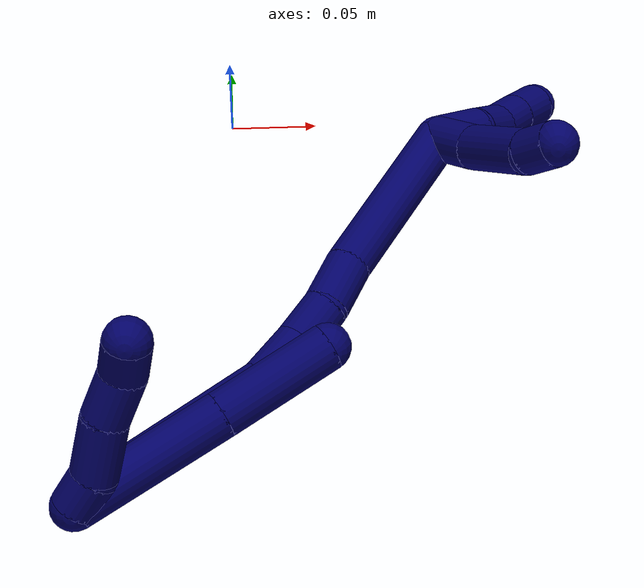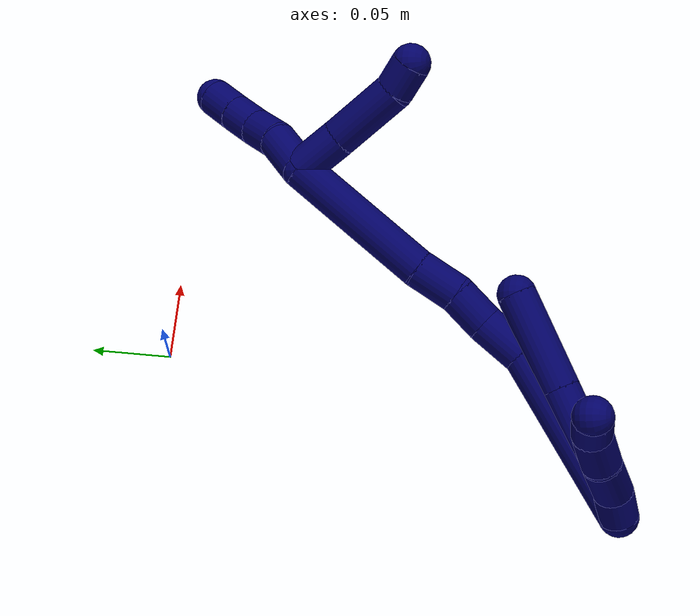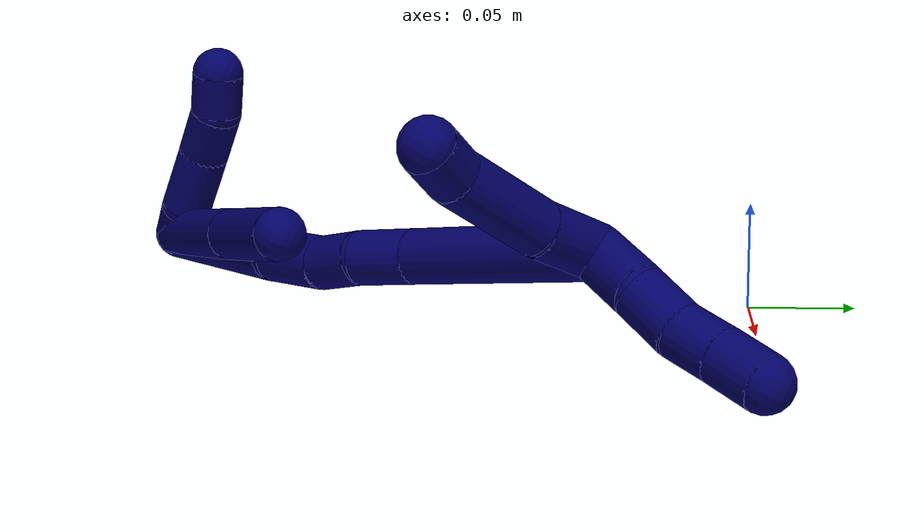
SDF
<sdf version="1.7">
 <world name="default">
  <model name="7">
   <static>0</static>
   <link name="7">
    <collision name="collision-cylinder-e_1_2_8">
     <pose>0.026178 0.029375 -0.016413 -2.08033 0.661147 -1.0584</pose>
     <geometry><cylinder><radius>0.0125</radius><length>0.085266</length></cylinder></geometry>
     <surface>
      <friction><ode><mu>1.16</mu><mu2>1.16</mu2><slip1>0</slip1><slip2>0</slip2></ode></friction>
      <contact><ode><kp>1e+06</kp><kd>1</kd><max_vel>0</max_vel><min_depth>0.001</min_depth></ode></contact>
     </surface>
    </collision>
    <visual name="visual-cylinder-e_1_2_8">
     <pose>0.026178 0.029375 -0.016413 -2.08033 0.661147 -1.0584</pose>
     <geometry><cylinder><radius>0.0125</radius><length>0.085266</length></cylinder></geometry>
     <material><ambient>0.003922 0 0.403922 1</ambient></material>
    </visual>
    <collision name="collision-cylinder-e_2_8_6">
     <pose>0.071936 0.081248 -0.045401 -2.08046 0.649716 -1.04226</pose>
     <geometry><cylinder><radius>0.0125</radius><length>0.064734</length></cylinder></geometry>
     <surface>
      <friction><ode><mu>1.16</mu><mu2>1.16</mu2><slip1>0</slip1><slip2>0</slip2></ode></friction>
      <contact><ode><kp>1e+06</kp><kd>1</kd><max_vel>0</max_vel><min_depth>0.001</min_depth></ode></contact>
     </surface>
    </collision>
    <visual name="visual-cylinder-e_2_8_6">
     <pose>0.071936 0.081248 -0.045401 -2.08046 0.649716 -1.04226</pose>
     <geometry><cylinder><radius>0.0125</radius><length>0.064734</length></cylinder></geometry>
     <material><ambient>0.003922 0 0.403922 1</ambient></material>
    </visual>
    <collision name="collision-cylinder-e_1_2_9">
     <pose>0.001589 0.010065 0.000616 -1.50964 0.156291 -0.147048</pose>
     <geometry><cylinder><radius>0.0125</radius><length>0.020417</length></cylinder></geometry>
     <surface>
      <friction><ode><mu>1.16</mu><mu2>1.16</mu2><slip1>0</slip1><slip2>0</slip2></ode></friction>
      <contact><ode><kp>1e+06</kp><kd>1</kd><max_vel>0</max_vel><min_depth>0.001</min_depth></ode></contact>
     </surface>
    </collision>
    <visual name="visual-cylinder-e_1_2_9">
     <pose>0.001589 0.010065 0.000616 -1.50964 0.156291 -0.147048</pose>
     <geometry><cylinder><radius>0.0125</radius><length>0.020417</length></cylinder></geometry>
     <material><ambient>0.003922 0 0.403922 1</ambient></material>
    </visual>
    <collision name="collision-cylinder-e_2_9_10">
     <pose>0.000268 0.036217 0.002518 -1.49106 -0.178411 0.164788</pose>
     <geometry><cylinder><radius>0.0125</radius><length>0.032795</length></cylinder></geometry>
     <surface>
      <friction><ode><mu>1.16</mu><mu2>1.16</mu2><slip1>0</slip1><slip2>0</slip2></ode></friction>
      <contact><ode><kp>1e+06</kp><kd>1</kd><max_vel>0</max_vel><min_depth>0.001</min_depth></ode></contact>
     </surface>
    </collision>
    <visual name="visual-cylinder-e_2_9_10">
     <pose>0.000268 0.036217 0.002518 -1.49106 -0.178411 0.164788</pose>
     <geometry><cylinder><radius>0.0125</radius><length>0.032795</length></cylinder></geometry>
     <material><ambient>0.003922 0 0.403922 1</ambient></material>
    </visual>
    <collision name="collision-cylinder-e_3_10_11">
     <pose>-0.002776 0.065375 0.004505 -1.51719 -0.010225 0.009691</pose>
     <geometry><cylinder><radius>0.0125</radius><length>0.026184</length></cylinder></geometry>
     <surface>
      <friction><ode><mu>1.16</mu><mu2>1.16</mu2><slip1>0</slip1><slip2>0</slip2></ode></friction>
      <contact><ode><kp>1e+06</kp><kd>1</kd><max_vel>0</max_vel><min_depth>0.001</min_depth></ode></contact>
     </surface>
    </collision>
    <visual name="visual-cylinder-e_3_10_11">
     <pose>-0.002776 0.065375 0.004505 -1.51719 -0.010225 0.009691</pose>
     <geometry><cylinder><radius>0.0125</radius><length>0.026184</length></cylinder></geometry>
     <material><ambient>0.003922 0 0.403922 1</ambient></material>
    </visual>
    <collision name="collision-cylinder-e_4_11_5">
     <pose>-0.004957 0.087955 0.008603 -1.22766 -0.200095 0.141231</pose>
     <geometry><cylinder><radius>0.0125</radius><length>0.020604</length></cylinder></geometry>
     <surface>
      <friction><ode><mu>1.16</mu><mu2>1.16</mu2><slip1>0</slip1><slip2>0</slip2></ode></friction>
      <contact><ode><kp>1e+06</kp><kd>1</kd><max_vel>0</max_vel><min_depth>0.001</min_depth></ode></contact>
     </surface>
    </collision>
    <visual name="visual-cylinder-e_4_11_5">
     <pose>-0.004957 0.087955 0.008603 -1.22766 -0.200095 0.141231</pose>
     <geometry><cylinder><radius>0.0125</radius><length>0.020604</length></cylinder></geometry>
     <material><ambient>0.003922 0 0.403922 1</ambient></material>
    </visual>
    <collision name="collision-cylinder-e_1_2_12">
     <pose>0.034145 0.036247 -0.028675 -2.24009 0.636291 -1.19498</pose>
     <geometry><cylinder><radius>0.0125</radius><length>0.114926</length></cylinder></geometry>
     <surface>
      <friction><ode><mu>1.16</mu><mu2>1.16</mu2><slip1>0</slip1><slip2>0</slip2></ode></friction>
      <contact><ode><kp>1e+06</kp><kd>1</kd><max_vel>0</max_vel><min_depth>0.001</min_depth></ode></contact>
     </surface>
    </collision>
    <visual name="visual-cylinder-e_1_2_12">
     <pose>0.034145 0.036247 -0.028675 -2.24009 0.636291 -1.19498</pose>
     <geometry><cylinder><radius>0.0125</radius><length>0.114926</length></cylinder></geometry>
     <material><ambient>0.003922 0 0.403922 1</ambient></material>
    </visual>
    <collision name="collision-cylinder-e_2_12_13">
     <pose>0.074091 0.08161 -0.068871 -2.47218 0.376001 -1.0011</pose>
     <geometry><cylinder><radius>0.0125</radius><length>0.031591</length></cylinder></geometry>
     <surface>
      <friction><ode><mu>1.16</mu><mu2>1.16</mu2><slip1>0</slip1><slip2>0</slip2></ode></friction>
      <contact><ode><kp>1e+06</kp><kd>1</kd><max_vel>0</max_vel><min_depth>0.001</min_depth></ode></contact>
     </surface>
    </collision>
    <visual name="visual-cylinder-e_2_12_13">
     <pose>0.074091 0.08161 -0.068871 -2.47218 0.376001 -1.0011</pose>
     <geometry><cylinder><radius>0.0125</radius><length>0.031591</length></cylinder></geometry>
     <material><ambient>0.003922 0 0.403922 1</ambient></material>
    </visual>
    <collision name="collision-cylinder-e_3_13_14">
     <pose>0.083975 0.100311 -0.088055 -2.24526 0.321275 -0.650112</pose>
     <geometry><cylinder><radius>0.0125</radius><length>0.025864</length></cylinder></geometry>
     <surface>
      <friction><ode><mu>1.16</mu><mu2>1.16</mu2><slip1>0</slip1><slip2>0</slip2></ode></friction>
      <contact><ode><kp>1e+06</kp><kd>1</kd><max_vel>0</max_vel><min_depth>0.001</min_depth></ode></contact>
     </surface>
    </collision>
    <visual name="visual-cylinder-e_3_13_14">
     <pose>0.083975 0.100311 -0.088055 -2.24526 0.321275 -0.650112</pose>
     <geometry><cylinder><radius>0.0125</radius><length>0.025864</length></cylinder></geometry>
     <material><ambient>0.003922 0 0.403922 1</ambient></material>
    </visual>
    <collision name="collision-cylinder-e_4_14_15">
     <pose>0.090668 0.119256 -0.106637 -2.43283 0.179473 -0.477105</pose>
     <geometry><cylinder><radius>0.0125</radius><length>0.029235</length></cylinder></geometry>
     <surface>
      <friction><ode><mu>1.16</mu><mu2>1.16</mu2><slip1>0</slip1><slip2>0</slip2></ode></friction>
      <contact><ode><kp>1e+06</kp><kd>1</kd><max_vel>0</max_vel><min_depth>0.001</min_depth></ode></contact>
     </surface>
    </collision>
    <visual name="visual-cylinder-e_4_14_15">
     <pose>0.090668 0.119256 -0.106637 -2.43283 0.179473 -0.477105</pose>
     <geometry><cylinder><radius>0.0125</radius><length>0.029235</length></cylinder></geometry>
     <material><ambient>0.003922 0 0.403922 1</ambient></material>
    </visual>
    <collision name="collision-cylinder-e_5_15_1">
     <pose>0.1069 0.16173 -0.151288 -2.36547 0.280589 -0.665259</pose>
     <geometry><cylinder><radius>0.0125</radius><length>0.098384</length></cylinder></geometry>
     <surface>
      <friction><ode><mu>1.16</mu><mu2>1.16</mu2><slip1>0</slip1><slip2>0</slip2></ode></friction>
      <contact><ode><kp>1e+06</kp><kd>1</kd><max_vel>0</max_vel><min_depth>0.001</min_depth></ode></contact>
     </surface>
    </collision>
    <visual name="visual-cylinder-e_5_15_1">
     <pose>0.1069 0.16173 -0.151288 -2.36547 0.280589 -0.665259</pose>
     <geometry><cylinder><radius>0.0125</radius><length>0.098384</length></cylinder></geometry>
     <material><ambient>0.003922 0 0.403922 1</ambient></material>
    </visual>
    <collision name="collision-cylinder-e_1_1_16">
     <pose>0.128665 0.19952 -0.172152 -0.348677 0.536543 -0.096758</pose>
     <geometry><cylinder><radius>0.0125</radius><length>0.03186</length></cylinder></geometry>
     <surface>
      <friction><ode><mu>1.16</mu><mu2>1.16</mu2><slip1>0</slip1><slip2>0</slip2></ode></friction>
      <contact><ode><kp>1e+06</kp><kd>1</kd><max_vel>0</max_vel><min_depth>0.001</min_depth></ode></contact>
     </surface>
    </collision>
    <visual name="visual-cylinder-e_1_1_16">
     <pose>0.128665 0.19952 -0.172152 -0.348677 0.536543 -0.096758</pose>
     <geometry><cylinder><radius>0.0125</radius><length>0.03186</length></cylinder></geometry>
     <material><ambient>0.003922 0 0.403922 1</ambient></material>
    </visual>
    <collision name="collision-cylinder-e_2_16_17">
     <pose>0.146255 0.213159 -0.139464 -0.424642 0.409735 -0.089524</pose>
     <geometry><cylinder><radius>0.0125</radius><length>0.047431</length></cylinder></geometry>
     <surface>
      <friction><ode><mu>1.16</mu><mu2>1.16</mu2><slip1>0</slip1><slip2>0</slip2></ode></friction>
      <contact><ode><kp>1e+06</kp><kd>1</kd><max_vel>0</max_vel><min_depth>0.001</min_depth></ode></contact>
     </surface>
    </collision>
    <visual name="visual-cylinder-e_2_16_17">
     <pose>0.146255 0.213159 -0.139464 -0.424642 0.409735 -0.089524</pose>
     <geometry><cylinder><radius>0.0125</radius><length>0.047431</length></cylinder></geometry>
     <material><ambient>0.003922 0 0.403922 1</ambient></material>
    </visual>
    <collision name="collision-cylinder-e_3_17_4">
     <pose>0.160062 0.228575 -0.11282 -0.757535 0.434512 -0.175252</pose>
     <geometry><cylinder><radius>0.0125</radius><length>0.020709</length></cylinder></geometry>
     <surface>
      <friction><ode><mu>1.16</mu><mu2>1.16</mu2><slip1>0</slip1><slip2>0</slip2></ode></friction>
      <contact><ode><kp>1e+06</kp><kd>1</kd><max_vel>0</max_vel><min_depth>0.001</min_depth></ode></contact>
     </surface>
    </collision>
    <visual name="visual-cylinder-e_3_17_4">
     <pose>0.160062 0.228575 -0.11282 -0.757535 0.434512 -0.175252</pose>
     <geometry><cylinder><radius>0.0125</radius><length>0.020709</length></cylinder></geometry>
     <material><ambient>0.003922 0 0.403922 1</ambient></material>
    </visual>
    <collision name="collision-cylinder-e_1_1_18">
     <pose>0.131555 0.198734 -0.195927 -2.79882 0.761205 -2.32503</pose>
     <geometry><cylinder><radius>0.0125</radius><length>0.031989</length></cylinder></geometry>
     <surface>
      <friction><ode><mu>1.16</mu><mu2>1.16</mu2><slip1>0</slip1><slip2>0</slip2></ode></friction>
      <contact><ode><kp>1e+06</kp><kd>1</kd><max_vel>0</max_vel><min_depth>0.001</min_depth></ode></contact>
     </surface>
    </collision>
    <visual name="visual-cylinder-e_1_1_18">
     <pose>0.131555 0.198734 -0.195927 -2.79882 0.761205 -2.32503</pose>
     <geometry><cylinder><radius>0.0125</radius><length>0.031989</length></cylinder></geometry>
     <material><ambient>0.003922 0 0.403922 1</ambient></material>
    </visual>
    <collision name="collision-cylinder-e_2_18_19">
     <pose>0.149369 0.203531 -0.216805 -3.05109 0.595293 -2.84847</pose>
     <geometry><cylinder><radius>0.0125</radius><length>0.024185</length></cylinder></geometry>
     <surface>
      <friction><ode><mu>1.16</mu><mu2>1.16</mu2><slip1>0</slip1><slip2>0</slip2></ode></friction>
      <contact><ode><kp>1e+06</kp><kd>1</kd><max_vel>0</max_vel><min_depth>0.001</min_depth></ode></contact>
     </surface>
    </collision>
    <visual name="visual-cylinder-e_2_18_19">
     <pose>0.149369 0.203531 -0.216805 -3.05109 0.595293 -2.84847</pose>
     <geometry><cylinder><radius>0.0125</radius><length>0.024185</length></cylinder></geometry>
     <material><ambient>0.003922 0 0.403922 1</ambient></material>
    </visual>
    <collision name="collision-cylinder-e_3_19_20">
     <pose>0.161409 0.207433 -0.235531 -2.8118 0.5168 -2.01779</pose>
     <geometry><cylinder><radius>0.0125</radius><length>0.021288</length></cylinder></geometry>
     <surface>
      <friction><ode><mu>1.16</mu><mu2>1.16</mu2><slip1>0</slip1><slip2>0</slip2></ode></friction>
      <contact><ode><kp>1e+06</kp><kd>1</kd><max_vel>0</max_vel><min_depth>0.001</min_depth></ode></contact>
     </surface>
    </collision>
    <visual name="visual-cylinder-e_3_19_20">
     <pose>0.161409 0.207433 -0.235531 -2.8118 0.5168 -2.01779</pose>
     <geometry><cylinder><radius>0.0125</radius><length>0.021288</length></cylinder></geometry>
     <material><ambient>0.003922 0 0.403922 1</ambient></material>
    </visual>
    <collision name="collision-cylinder-e_4_20_3">
     <pose>0.17255 0.21351 -0.253392 -2.81542 0.54917 -2.08426</pose>
     <geometry><cylinder><radius>0.0125</radius><length>0.022537</length></cylinder></geometry>
     <surface>
      <friction><ode><mu>1.16</mu><mu2>1.16</mu2><slip1>0</slip1><slip2>0</slip2></ode></friction>
      <contact><ode><kp>1e+06</kp><kd>1</kd><max_vel>0</max_vel><min_depth>0.001</min_depth></ode></contact>
     </surface>
    </collision>
    <visual name="visual-cylinder-e_4_20_3">
     <pose>0.17255 0.21351 -0.253392 -2.81542 0.54917 -2.08426</pose>
     <geometry><cylinder><radius>0.0125</radius><length>0.022537</length></cylinder></geometry>
     <material><ambient>0.003922 0 0.403922 1</ambient></material>
    </visual>
    <collision name="collision-sphere-3">
     <pose>0.178432 0.21659 -0.262497 0 -0 0</pose>
     <geometry><sphere><radius>0.0125</radius></sphere></geometry>
     <surface>
      <friction><ode><mu>1.16</mu><mu2>1.16</mu2><slip1>0</slip1><slip2>0</slip2></ode></friction>
      <contact><ode><kp>1e+06</kp><kd>1</kd><max_vel>0</max_vel><min_depth>0.001</min_depth></ode></contact>
     </surface>
    </collision>
    <visual name="visual-sphere-3">
     <pose>0.178432 0.21659 -0.262497 0 -0 0</pose>
     <geometry><sphere><radius>0.0125</radius></sphere></geometry>
     <material><ambient>0.003922 0 0.403922 1</ambient></material>
    </visual>
    <collision name="collision-sphere-20">
     <pose>0.166668 0.21043 -0.244287 0 -0 0</pose>
     <geometry><sphere><radius>0.0125</radius></sphere></geometry>
     <surface>
      <friction><ode><mu>1.16</mu><mu2>1.16</mu2><slip1>0</slip1><slip2>0</slip2></ode></friction>
      <contact><ode><kp>1e+06</kp><kd>1</kd><max_vel>0</max_vel><min_depth>0.001</min_depth></ode></contact>
     </surface>
    </collision>
    <visual name="visual-sphere-20">
     <pose>0.166668 0.21043 -0.244287 0 -0 0</pose>
     <geometry><sphere><radius>0.0125</radius></sphere></geometry>
     <material><ambient>0.003922 0 0.403922 1</ambient></material>
    </visual>
    <collision name="collision-sphere-19">
     <pose>0.15615 0.204436 -0.226776 0 -0 0</pose>
     <geometry><sphere><radius>0.0125</radius></sphere></geometry>
     <surface>
      <friction><ode><mu>1.16</mu><mu2>1.16</mu2><slip1>0</slip1><slip2>0</slip2></ode></friction>
      <contact><ode><kp>1e+06</kp><kd>1</kd><max_vel>0</max_vel><min_depth>0.001</min_depth></ode></contact>
     </surface>
    </collision>
    <visual name="visual-sphere-19">
     <pose>0.15615 0.204436 -0.226776 0 -0 0</pose>
     <geometry><sphere><radius>0.0125</radius></sphere></geometry>
     <material><ambient>0.003922 0 0.403922 1</ambient></material>
    </visual>
    <collision name="collision-sphere-11">
     <pose>-0.00291 0.078447 0.005206 0 -0 0</pose>
     <geometry><sphere><radius>0.0125</radius></sphere></geometry>
     <surface>
      <friction><ode><mu>1.16</mu><mu2>1.16</mu2><slip1>0</slip1><slip2>0</slip2></ode></friction>
      <contact><ode><kp>1e+06</kp><kd>1</kd><max_vel>0</max_vel><min_depth>0.001</min_depth></ode></contact>
     </surface>
    </collision>
    <visual name="visual-sphere-11">
     <pose>-0.00291 0.078447 0.005206 0 -0 0</pose>
     <geometry><sphere><radius>0.0125</radius></sphere></geometry>
     <material><ambient>0.003922 0 0.403922 1</ambient></material>
    </visual>
    <collision name="collision-sphere-10">
     <pose>-0.002642 0.052302 0.003803 0 -0 0</pose>
     <geometry><sphere><radius>0.0125</radius></sphere></geometry>
     <surface>
      <friction><ode><mu>1.16</mu><mu2>1.16</mu2><slip1>0</slip1><slip2>0</slip2></ode></friction>
      <contact><ode><kp>1e+06</kp><kd>1</kd><max_vel>0</max_vel><min_depth>0.001</min_depth></ode></contact>
     </surface>
    </collision>
    <visual name="visual-sphere-10">
     <pose>-0.002642 0.052302 0.003803 0 -0 0</pose>
     <geometry><sphere><radius>0.0125</radius></sphere></geometry>
     <material><ambient>0.003922 0 0.403922 1</ambient></material>
    </visual>
    <collision name="collision-sphere-6">
     <pose>0.091517 0.103745 -0.057974 0 -0 0</pose>
     <geometry><sphere><radius>0.0125</radius></sphere></geometry>
     <surface>
      <friction><ode><mu>1.16</mu><mu2>1.16</mu2><slip1>0</slip1><slip2>0</slip2></ode></friction>
      <contact><ode><kp>1e+06</kp><kd>1</kd><max_vel>0</max_vel><min_depth>0.001</min_depth></ode></contact>
     </surface>
    </collision>
    <visual name="visual-sphere-6">
     <pose>0.091517 0.103745 -0.057974 0 -0 0</pose>
     <geometry><sphere><radius>0.0125</radius></sphere></geometry>
     <material><ambient>0.003922 0 0.403922 1</ambient></material>
    </visual>
    <collision name="collision-sphere-9">
     <pose>0.003178 0.020131 0.001233 0 -0 0</pose>
     <geometry><sphere><radius>0.0125</radius></sphere></geometry>
     <surface>
      <friction><ode><mu>1.16</mu><mu2>1.16</mu2><slip1>0</slip1><slip2>0</slip2></ode></friction>
      <contact><ode><kp>1e+06</kp><kd>1</kd><max_vel>0</max_vel><min_depth>0.001</min_depth></ode></contact>
     </surface>
    </collision>
    <visual name="visual-sphere-9">
     <pose>0.003178 0.020131 0.001233 0 -0 0</pose>
     <geometry><sphere><radius>0.0125</radius></sphere></geometry>
     <material><ambient>0.003922 0 0.403922 1</ambient></material>
    </visual>
    <collision name="collision-sphere-2">
     <geometry><sphere><radius>0.0125</radius></sphere></geometry>
     <surface>
      <friction><ode><mu>1.16</mu><mu2>1.16</mu2><slip1>0</slip1><slip2>0</slip2></ode></friction>
      <contact><ode><kp>1e+06</kp><kd>1</kd><max_vel>0</max_vel><min_depth>0.001</min_depth></ode></contact>
     </surface>
    </collision>
    <visual name="visual-sphere-2">
     <geometry><sphere><radius>0.0125</radius></sphere></geometry>
     <material><ambient>0.003922 0 0.403922 1</ambient></material>
    </visual>
    <collision name="collision-sphere-8">
     <pose>0.052355 0.058751 -0.032827 0 -0 0</pose>
     <geometry><sphere><radius>0.0125</radius></sphere></geometry>
     <surface>
      <friction><ode><mu>1.16</mu><mu2>1.16</mu2><slip1>0</slip1><slip2>0</slip2></ode></friction>
      <contact><ode><kp>1e+06</kp><kd>1</kd><max_vel>0</max_vel><min_depth>0.001</min_depth></ode></contact>
     </surface>
    </collision>
    <visual name="visual-sphere-8">
     <pose>0.052355 0.058751 -0.032827 0 -0 0</pose>
     <geometry><sphere><radius>0.0125</radius></sphere></geometry>
     <material><ambient>0.003922 0 0.403922 1</ambient></material>
    </visual>
    <collision name="collision-sphere-5">
     <pose>-0.007005 0.097463 0.012 0 -0 0</pose>
     <geometry><sphere><radius>0.0125</radius></sphere></geometry>
     <surface>
      <friction><ode><mu>1.16</mu><mu2>1.16</mu2><slip1>0</slip1><slip2>0</slip2></ode></friction>
      <contact><ode><kp>1e+06</kp><kd>1</kd><max_vel>0</max_vel><min_depth>0.001</min_depth></ode></contact>
     </surface>
    </collision>
    <visual name="visual-sphere-5">
     <pose>-0.007005 0.097463 0.012 0 -0 0</pose>
     <geometry><sphere><radius>0.0125</radius></sphere></geometry>
     <material><ambient>0.003922 0 0.403922 1</ambient></material>
    </visual>
    <collision name="collision-sphere-12">
     <pose>0.068291 0.072494 -0.05735 0 -0 0</pose>
     <geometry><sphere><radius>0.0125</radius></sphere></geometry>
     <surface>
      <friction><ode><mu>1.16</mu><mu2>1.16</mu2><slip1>0</slip1><slip2>0</slip2></ode></friction>
      <contact><ode><kp>1e+06</kp><kd>1</kd><max_vel>0</max_vel><min_depth>0.001</min_depth></ode></contact>
     </surface>
    </collision>
    <visual name="visual-sphere-12">
     <pose>0.068291 0.072494 -0.05735 0 -0 0</pose>
     <geometry><sphere><radius>0.0125</radius></sphere></geometry>
     <material><ambient>0.003922 0 0.403922 1</ambient></material>
    </visual>
    <collision name="collision-sphere-13">
     <pose>0.079891 0.090727 -0.080393 0 -0 0</pose>
     <geometry><sphere><radius>0.0125</radius></sphere></geometry>
     <surface>
      <friction><ode><mu>1.16</mu><mu2>1.16</mu2><slip1>0</slip1><slip2>0</slip2></ode></friction>
      <contact><ode><kp>1e+06</kp><kd>1</kd><max_vel>0</max_vel><min_depth>0.001</min_depth></ode></contact>
     </surface>
    </collision>
    <visual name="visual-sphere-13">
     <pose>0.079891 0.090727 -0.080393 0 -0 0</pose>
     <geometry><sphere><radius>0.0125</radius></sphere></geometry>
     <material><ambient>0.003922 0 0.403922 1</ambient></material>
    </visual>
    <collision name="collision-sphere-14">
     <pose>0.088059 0.109895 -0.095718 0 -0 0</pose>
     <geometry><sphere><radius>0.0125</radius></sphere></geometry>
     <surface>
      <friction><ode><mu>1.16</mu><mu2>1.16</mu2><slip1>0</slip1><slip2>0</slip2></ode></friction>
      <contact><ode><kp>1e+06</kp><kd>1</kd><max_vel>0</max_vel><min_depth>0.001</min_depth></ode></contact>
     </surface>
    </collision>
    <visual name="visual-sphere-14">
     <pose>0.088059 0.109895 -0.095718 0 -0 0</pose>
     <geometry><sphere><radius>0.0125</radius></sphere></geometry>
     <material><ambient>0.003922 0 0.403922 1</ambient></material>
    </visual>
    <collision name="collision-sphere-15">
     <pose>0.093277 0.128618 -0.117556 0 -0 0</pose>
     <geometry><sphere><radius>0.0125</radius></sphere></geometry>
     <surface>
      <friction><ode><mu>1.16</mu><mu2>1.16</mu2><slip1>0</slip1><slip2>0</slip2></ode></friction>
      <contact><ode><kp>1e+06</kp><kd>1</kd><max_vel>0</max_vel><min_depth>0.001</min_depth></ode></contact>
     </surface>
    </collision>
    <visual name="visual-sphere-15">
     <pose>0.093277 0.128618 -0.117556 0 -0 0</pose>
     <geometry><sphere><radius>0.0125</radius></sphere></geometry>
     <material><ambient>0.003922 0 0.403922 1</ambient></material>
    </visual>
    <collision name="collision-sphere-1">
     <pose>0.120522 0.194842 -0.18502 0 -0 0</pose>
     <geometry><sphere><radius>0.0125</radius></sphere></geometry>
     <surface>
      <friction><ode><mu>1.16</mu><mu2>1.16</mu2><slip1>0</slip1><slip2>0</slip2></ode></friction>
      <contact><ode><kp>1e+06</kp><kd>1</kd><max_vel>0</max_vel><min_depth>0.001</min_depth></ode></contact>
     </surface>
    </collision>
    <visual name="visual-sphere-1">
     <pose>0.120522 0.194842 -0.18502 0 -0 0</pose>
     <geometry><sphere><radius>0.0125</radius></sphere></geometry>
     <material><ambient>0.003922 0 0.403922 1</ambient></material>
    </visual>
    <collision name="collision-sphere-18">
     <pose>0.142588 0.202626 -0.206833 0 -0 0</pose>
     <geometry><sphere><radius>0.0125</radius></sphere></geometry>
     <surface>
      <friction><ode><mu>1.16</mu><mu2>1.16</mu2><slip1>0</slip1><slip2>0</slip2></ode></friction>
      <contact><ode><kp>1e+06</kp><kd>1</kd><max_vel>0</max_vel><min_depth>0.001</min_depth></ode></contact>
     </surface>
    </collision>
    <visual name="visual-sphere-18">
     <pose>0.142588 0.202626 -0.206833 0 -0 0</pose>
     <geometry><sphere><radius>0.0125</radius></sphere></geometry>
     <material><ambient>0.003922 0 0.403922 1</ambient></material>
    </visual>
    <collision name="collision-sphere-16">
     <pose>0.136808 0.204197 -0.159285 0 -0 0</pose>
     <geometry><sphere><radius>0.0125</radius></sphere></geometry>
     <surface>
      <friction><ode><mu>1.16</mu><mu2>1.16</mu2><slip1>0</slip1><slip2>0</slip2></ode></friction>
      <contact><ode><kp>1e+06</kp><kd>1</kd><max_vel>0</max_vel><min_depth>0.001</min_depth></ode></contact>
     </surface>
    </collision>
    <visual name="visual-sphere-16">
     <pose>0.136808 0.204197 -0.159285 0 -0 0</pose>
     <geometry><sphere><radius>0.0125</radius></sphere></geometry>
     <material><ambient>0.003922 0 0.403922 1</ambient></material>
    </visual>
    <collision name="collision-sphere-17">
     <pose>0.155703 0.222121 -0.119644 0 -0 0</pose>
     <geometry><sphere><radius>0.0125</radius></sphere></geometry>
     <surface>
      <friction><ode><mu>1.16</mu><mu2>1.16</mu2><slip1>0</slip1><slip2>0</slip2></ode></friction>
      <contact><ode><kp>1e+06</kp><kd>1</kd><max_vel>0</max_vel><min_depth>0.001</min_depth></ode></contact>
     </surface>
    </collision>
    <visual name="visual-sphere-17">
     <pose>0.155703 0.222121 -0.119644 0 -0 0</pose>
     <geometry><sphere><radius>0.0125</radius></sphere></geometry>
     <material><ambient>0.003922 0 0.403922 1</ambient></material>
    </visual>
    <collision name="collision-sphere-4">
     <pose>0.16442 0.235029 -0.105996 0 -0 0</pose>
     <geometry><sphere><radius>0.0125</radius></sphere></geometry>
     <surface>
      <friction><ode><mu>1.16</mu><mu2>1.16</mu2><slip1>0</slip1><slip2>0</slip2></ode></friction>
      <contact><ode><kp>1e+06</kp><kd>1</kd><max_vel>0</max_vel><min_depth>0.001</min_depth></ode></contact>
     </surface>
    </collision>
    <visual name="visual-sphere-4">
     <pose>0.16442 0.235029 -0.105996 0 -0 0</pose>
     <geometry><sphere><radius>0.0125</radius></sphere></geometry>
     <material><ambient>0.003922 0 0.403922 1</ambient></material>
    </visual>
    <inertial>
     <pose>0.077142 0.110835 -0.088494 0 -0 0</pose>
     <mass>0.75</mass>
     <inertia>
      <ixx>-3.2e-05</ixx>
      <ixy>0</ixy>
      <ixz>0</ixz>
      <iyy>-0.000151</iyy>
      <iyz>0</iyz>
      <izz>-0.0004</izz>
     </inertia>
    </inertial>
   </link>
   <pose>-0.081577 -0.287975 0.014593 1.08371 0.351007 -0.231385</pose>
  </model>
 </world>
</sdf>
